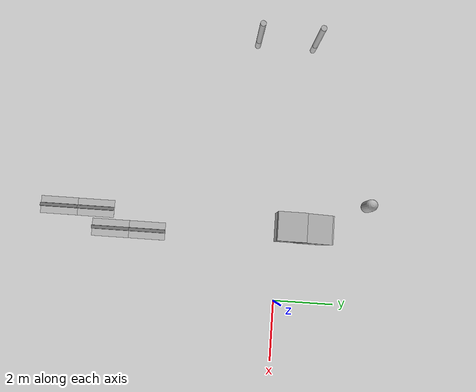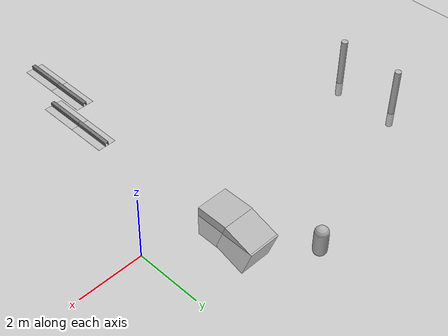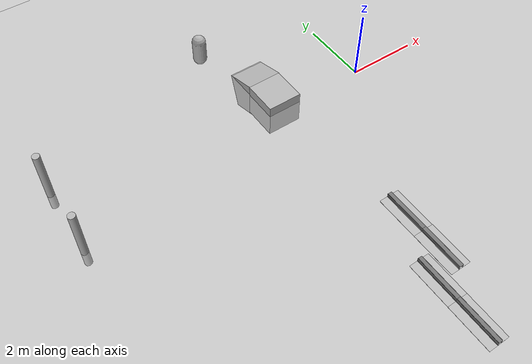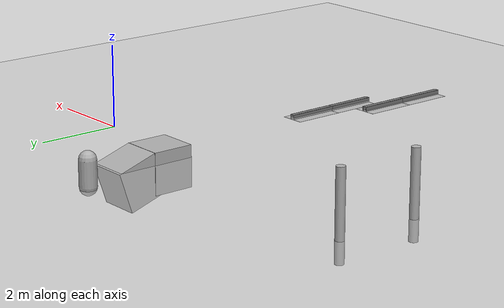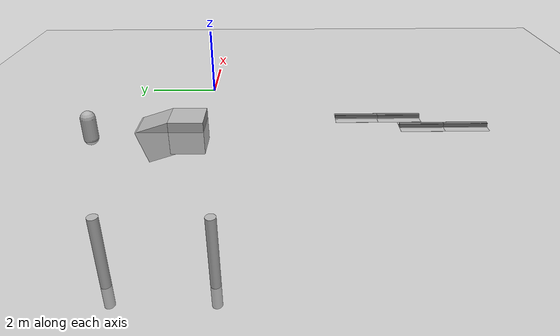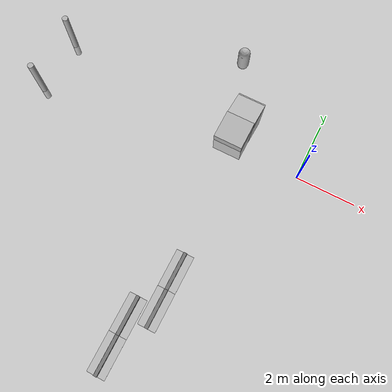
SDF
<sdf version="1.10">
 <world name="empty">
  <physics name="1ms" type="ignored">
   <max_step_size>0.001</max_step_size>
   <real_time_factor>1</real_time_factor>
   <real_time_update_rate>1000</real_time_update_rate>
  </physics>
  <plugin name="gz::sim::systems::Physics" filename="gz-sim-physics-system"/>
  <plugin name="gz::sim::systems::UserCommands" filename="gz-sim-user-commands-system"/>
  <plugin name="gz::sim::systems::SceneBroadcaster" filename="gz-sim-scene-broadcaster-system"/>
  <plugin name="gz::sim::systems::Contact" filename="gz-sim-contact-system"/>
  <gravity>0 0 -9.8000000000000007</gravity>
  <magnetic_field>5.5644999999999998e-06 2.2875799999999999e-05 -4.2388400000000002e-05</magnetic_field>
  <atmosphere type="adiabatic"/>
  <scene>
   <ambient>0.400000006 0.400000006 0.400000006 1</ambient>
   <background>0.699999988 0.699999988 0.699999988 1</background>
   <shadows>true</shadows>
  </scene>
  <model name="ground_plane">
   <static>true</static>
   <link name="link">
    <collision name="collision">
     <geometry><plane><normal>0 0 1</normal><size>100 100</size></plane></geometry>
    </collision>
    <visual name="visual">
     <geometry><plane><normal>0 0 1</normal><size>100 100</size></plane></geometry>
     <material>
      <ambient>0.800000012 0.800000012 0.800000012 1</ambient>
      <diffuse>0.800000012 0.800000012 0.800000012 1</diffuse>
      <specular>0.800000012 0.800000012 0.800000012 1</specular>
     </material>
    </visual>
    <inertial>
     <mass>1</mass>
     <inertia><ixx>1</ixx><ixy>0</ixy><ixz>0</ixz><iyy>1</iyy><iyz>0</iyz><izz>1</izz></inertia>
    </inertial>
   </link>
  </model>
  <model name="frc2016_rockwall">
   <static>true</static>
   <link name="link">
    <inertial>
     <mass>10</mass>
     <pose>0 0 0.08974 0 0 0</pose>
     <inertia>
      <ixx>0.32709083300000003</ixx>
      <ixy>0</ixy>
      <ixz>0</ixz>
      <iyy>1.3741666669999999</iyy>
      <iyz>0</iyz>
      <izz>1.641090833</izz>
     </inertia>
    </inertial>
    <visual name="platform">
     <pose>0 0 0.064320000000000002 0 0 0</pose>
     <geometry><box><size>1.27 0.59689999999999999 0.0031749999999999999</size></box></geometry>
    </visual>
    <collision name="platform">
     <pose>0 0 0.064320000000000002 0 0 0</pose>
     <geometry><box><size>1.27 0.59689999999999999 0.0031749999999999999</size></box></geometry>
    </collision>
    <visual name="up1">
     <pose>0 0.051659999999999998 0.12537000000000001 0 0 0</pose>
     <geometry><box><size>1.27 0.00462 0.11892</size></box></geometry>
     <material>
      <ambient>0.460000008 0.460000008 0.460000008 1</ambient>
      <diffuse>0.460000008 0.460000008 0.460000008 1</diffuse>
     </material>
    </visual>
    <collision name="up1">
     <pose>0 0.051659999999999998 0.12537000000000001 0 0 0</pose>
     <geometry><box><size>1.27 0.00462 0.11892</size></box></geometry>
    </collision>
    <visual name="up2">
     <pose>0 -0.058009999999999999 0.12537000000000001 0 0 0</pose>
     <geometry><box><size>1.27 0.00462 0.11892</size></box></geometry>
     <material>
      <ambient>0.460000008 0.460000008 0.460000008 1</ambient>
      <diffuse>0.460000008 0.460000008 0.460000008 1</diffuse>
     </material>
    </visual>
    <collision name="up2">
     <pose>0 -0.058009999999999999 0.12537000000000001 0 0 0</pose>
     <geometry><box><size>1.27 0.00462 0.11892</size></box></geometry>
    </collision>
    <visual name="top">
     <pose>0 -0.00249 0.18251999999999999 0 0 0</pose>
     <geometry><box><size>1.27 0.1143 0.00462</size></box></geometry>
     <material>
      <ambient>0.460000008 0.460000008 0.460000008 1</ambient>
      <diffuse>0.460000008 0.460000008 0.460000008 1</diffuse>
     </material>
    </visual>
    <collision name="top">
     <pose>0 -0.00249 0.18251999999999999 0 0 0</pose>
     <geometry><box><size>1.27 0.1143 0.00462</size></box></geometry>
    </collision>
   </link>
   <pose>-2.7002499103546143 -7.5103697776794434 -0.10456207394599915 0 0 1.5712199869170431</pose>
  </model>
  <model name="frc2016_rockwall_1">
   <static>true</static>
   <link name="link">
    <inertial>
     <mass>10</mass>
     <pose>0 0 0.08974 0 0 0</pose>
     <inertia>
      <ixx>0.32709083300000003</ixx>
      <ixy>0</ixy>
      <ixz>0</ixz>
      <iyy>1.3741666669999999</iyy>
      <iyz>0</iyz>
      <izz>1.641090833</izz>
     </inertia>
    </inertial>
    <visual name="platform">
     <pose>0 0 0.064320000000000002 0 0 0</pose>
     <geometry><box><size>1.27 0.59689999999999999 0.0031749999999999999</size></box></geometry>
    </visual>
    <collision name="platform">
     <pose>0 0 0.064320000000000002 0 0 0</pose>
     <geometry><box><size>1.27 0.59689999999999999 0.0031749999999999999</size></box></geometry>
    </collision>
    <visual name="up1">
     <pose>0 0.051659999999999998 0.12537000000000001 0 0 0</pose>
     <geometry><box><size>1.27 0.00462 0.11892</size></box></geometry>
     <material>
      <ambient>0.460000008 0.460000008 0.460000008 1</ambient>
      <diffuse>0.460000008 0.460000008 0.460000008 1</diffuse>
     </material>
    </visual>
    <collision name="up1">
     <pose>0 0.051659999999999998 0.12537000000000001 0 0 0</pose>
     <geometry><box><size>1.27 0.00462 0.11892</size></box></geometry>
    </collision>
    <visual name="up2">
     <pose>0 -0.058009999999999999 0.12537000000000001 0 0 0</pose>
     <geometry><box><size>1.27 0.00462 0.11892</size></box></geometry>
     <material>
      <ambient>0.460000008 0.460000008 0.460000008 1</ambient>
      <diffuse>0.460000008 0.460000008 0.460000008 1</diffuse>
     </material>
    </visual>
    <collision name="up2">
     <pose>0 -0.058009999999999999 0.12537000000000001 0 0 0</pose>
     <geometry><box><size>1.27 0.00462 0.11892</size></box></geometry>
    </collision>
    <visual name="top">
     <pose>0 -0.00249 0.18251999999999999 0 0 0</pose>
     <geometry><box><size>1.27 0.1143 0.00462</size></box></geometry>
     <material>
      <ambient>0.460000008 0.460000008 0.460000008 1</ambient>
      <diffuse>0.460000008 0.460000008 0.460000008 1</diffuse>
     </material>
    </visual>
    <collision name="top">
     <pose>0 -0.00249 0.18251999999999999 0 0 0</pose>
     <geometry><box><size>1.27 0.1143 0.00462</size></box></geometry>
    </collision>
   </link>
   <pose>-2.6985399723052979 -6.2470002174377441 -0.10639206320047379 0 0 1.5712199869170431</pose>
  </model>
  <model name="frc2016_rockwall_1_1">
   <static>true</static>
   <link name="link">
    <inertial>
     <mass>10</mass>
     <pose>0 0 0.08974 0 0 0</pose>
     <inertia>
      <ixx>0.32709083300000003</ixx>
      <ixy>0</ixy>
      <ixz>0</ixz>
      <iyy>1.3741666669999999</iyy>
      <iyz>0</iyz>
      <izz>1.641090833</izz>
     </inertia>
    </inertial>
    <visual name="platform">
     <pose>0 0 0.064320000000000002 0 0 0</pose>
     <geometry><box><size>1.27 0.59689999999999999 0.0031749999999999999</size></box></geometry>
    </visual>
    <collision name="platform">
     <pose>0 0 0.064320000000000002 0 0 0</pose>
     <geometry><box><size>1.27 0.59689999999999999 0.0031749999999999999</size></box></geometry>
    </collision>
    <visual name="up1">
     <pose>0 0.051659999999999998 0.12537000000000001 0 0 0</pose>
     <geometry><box><size>1.27 0.00462 0.11892</size></box></geometry>
     <material>
      <ambient>0.460000008 0.460000008 0.460000008 1</ambient>
      <diffuse>0.460000008 0.460000008 0.460000008 1</diffuse>
     </material>
    </visual>
    <collision name="up1">
     <pose>0 0.051659999999999998 0.12537000000000001 0 0 0</pose>
     <geometry><box><size>1.27 0.00462 0.11892</size></box></geometry>
    </collision>
    <visual name="up2">
     <pose>0 -0.058009999999999999 0.12537000000000001 0 0 0</pose>
     <geometry><box><size>1.27 0.00462 0.11892</size></box></geometry>
     <material>
      <ambient>0.460000008 0.460000008 0.460000008 1</ambient>
      <diffuse>0.460000008 0.460000008 0.460000008 1</diffuse>
     </material>
    </visual>
    <collision name="up2">
     <pose>0 -0.058009999999999999 0.12537000000000001 0 0 0</pose>
     <geometry><box><size>1.27 0.00462 0.11892</size></box></geometry>
    </collision>
    <visual name="top">
     <pose>0 -0.00249 0.18251999999999999 0 0 0</pose>
     <geometry><box><size>1.27 0.1143 0.00462</size></box></geometry>
     <material>
      <ambient>0.460000008 0.460000008 0.460000008 1</ambient>
      <diffuse>0.460000008 0.460000008 0.460000008 1</diffuse>
     </material>
    </visual>
    <collision name="top">
     <pose>0 -0.00249 0.18251999999999999 0 0 0</pose>
     <geometry><box><size>1.27 0.1143 0.00462</size></box></geometry>
    </collision>
   </link>
   <pose>-2.0486600399017334 -5.6950101852416992 -0.12306392937898636 0 0 1.5712199869170431</pose>
  </model>
  <model name="frc2016_rockwall_1_1_1">
   <static>true</static>
   <link name="link">
    <inertial>
     <mass>10</mass>
     <pose>0 0 0.08974 0 0 0</pose>
     <inertia>
      <ixx>0.32709083300000003</ixx>
      <ixy>0</ixy>
      <ixz>0</ixz>
      <iyy>1.3741666669999999</iyy>
      <iyz>0</iyz>
      <izz>1.641090833</izz>
     </inertia>
    </inertial>
    <visual name="platform">
     <pose>0 0 0.064320000000000002 0 0 0</pose>
     <geometry><box><size>1.27 0.59689999999999999 0.0031749999999999999</size></box></geometry>
    </visual>
    <collision name="platform">
     <pose>0 0 0.064320000000000002 0 0 0</pose>
     <geometry><box><size>1.27 0.59689999999999999 0.0031749999999999999</size></box></geometry>
    </collision>
    <visual name="up1">
     <pose>0 0.051659999999999998 0.12537000000000001 0 0 0</pose>
     <geometry><box><size>1.27 0.00462 0.11892</size></box></geometry>
     <material>
      <ambient>0.460000008 0.460000008 0.460000008 1</ambient>
      <diffuse>0.460000008 0.460000008 0.460000008 1</diffuse>
     </material>
    </visual>
    <collision name="up1">
     <pose>0 0.051659999999999998 0.12537000000000001 0 0 0</pose>
     <geometry><box><size>1.27 0.00462 0.11892</size></box></geometry>
    </collision>
    <visual name="up2">
     <pose>0 -0.058009999999999999 0.12537000000000001 0 0 0</pose>
     <geometry><box><size>1.27 0.00462 0.11892</size></box></geometry>
     <material>
      <ambient>0.460000008 0.460000008 0.460000008 1</ambient>
      <diffuse>0.460000008 0.460000008 0.460000008 1</diffuse>
     </material>
    </visual>
    <collision name="up2">
     <pose>0 -0.058009999999999999 0.12537000000000001 0 0 0</pose>
     <geometry><box><size>1.27 0.00462 0.11892</size></box></geometry>
    </collision>
    <visual name="top">
     <pose>0 -0.00249 0.18251999999999999 0 0 0</pose>
     <geometry><box><size>1.27 0.1143 0.00462</size></box></geometry>
     <material>
      <ambient>0.460000008 0.460000008 0.460000008 1</ambient>
      <diffuse>0.460000008 0.460000008 0.460000008 1</diffuse>
     </material>
    </visual>
    <collision name="top">
     <pose>0 -0.00249 0.18251999999999999 0 0 0</pose>
     <geometry><box><size>1.27 0.1143 0.00462</size></box></geometry>
    </collision>
   </link>
   <pose>-2.0499799251556396 -4.4498801231384277 -0.1247732862830162 0 0 1.5712199869170431</pose>
  </model>
  <model name="cylinder">
   <pose>-8.9811983108520508 0.97775900363922119 0.5 0 0 0</pose>
   <link name="cylinder_link">
    <inertial>
     <inertia>
      <ixx>0.14580000000000001</ixx>
      <ixy>0</ixy>
      <ixz>0</ixz>
      <iyy>0.14580000000000001</iyy>
      <iyz>0</iyz>
      <izz>0.125</izz>
     </inertia>
     <mass>1</mass>
    </inertial>
    <collision name="cylinder_collision">
     <geometry><cylinder><radius>0.5</radius><length>1</length></cylinder></geometry>
    </collision>
    <visual name="cylinder_visual">
     <geometry><cylinder><radius>0.10000000000000001</radius><length>2</length></cylinder></geometry>
     <material>
      <ambient>0.300000012 0.300000012 0.300000012 1</ambient>
      <diffuse>0.699999988 0.699999988 0.699999988 1</diffuse>
      <specular>1 1 1 1</specular>
     </material>
    </visual>
   </link>
   <static>false</static>
  </model>
  <model name="cylinder_1">
   <pose>-9.012346495167975 -1.0121259450758813 0.5 0 0 0</pose>
   <link name="cylinder_link">
    <inertial>
     <inertia>
      <ixx>0.14580000000000001</ixx>
      <ixy>0</ixy>
      <ixz>0</ixz>
      <iyy>0.14580000000000001</iyy>
      <iyz>0</iyz>
      <izz>0.125</izz>
     </inertia>
     <mass>1</mass>
    </inertial>
    <collision name="cylinder_collision">
     <geometry><cylinder><radius>0.5</radius><length>1</length></cylinder></geometry>
    </collision>
    <visual name="cylinder_visual">
     <geometry><cylinder><radius>0.10000000000000001</radius><length>2</length></cylinder></geometry>
     <material>
      <ambient>0.300000012 0.300000012 0.300000012 1</ambient>
      <diffuse>0.699999988 0.699999988 0.699999988 1</diffuse>
      <specular>1 1 1 1</specular>
     </material>
    </visual>
   </link>
   <static>false</static>
  </model>
  <model name="box">
   <pose>-2.498150110244751 0.49283799529075623 -0.2164795845746994 0 0 0</pose>
   <link name="box_link">
    <inertial>
     <inertia><ixx>0.16666</ixx><ixy>0</ixy><ixz>0</ixz><iyy>0.16666</iyy><iyz>0</iyz><izz>0.16666</izz></inertia>
     <mass>1</mass>
    </inertial>
    <collision name="box_collision"><geometry><box><size>1 1 1</size></box></geometry></collision>
    <visual name="box_visual">
     <geometry><box><size>1 1 1</size></box></geometry>
     <material>
      <ambient>0.300000012 0.300000012 0.300000012 1</ambient>
      <diffuse>0.699999988 0.699999988 0.699999988 1</diffuse>
      <specular>1 1 1 1</specular>
     </material>
    </visual>
   </link>
   <static>false</static>
  </model>
  <model name="box_0">
   <pose>-2.4876399040222168 1.3118331432342529 -0.34988549351692194 -0.31393998167267784 0 0</pose>
   <link name="box_link">
    <inertial>
     <inertia><ixx>0.16666</ixx><ixy>0</ixy><ixz>0</ixz><iyy>0.16666</iyy><iyz>0</iyz><izz>0.16666</izz></inertia>
     <mass>1</mass>
    </inertial>
    <collision name="box_collision"><geometry><box><size>1 1 1</size></box></geometry></collision>
    <visual name="box_visual">
     <geometry><box><size>1 1 1</size></box></geometry>
     <material>
      <ambient>0.300000012 0.300000012 0.300000012 1</ambient>
      <diffuse>0.699999988 0.699999988 0.699999988 1</diffuse>
      <specular>1 1 1 1</specular>
     </material>
    </visual>
   </link>
   <static>false</static>
  </model>
  <model name="capsule">
   <pose>-3.3680999279022217 3.0115900039672852 0.34098318219184875 0 0 0</pose>
   <link name="capsule_link">
    <inertial>
     <inertia>
      <ixx>0.074153999999999998</ixx>
      <ixy>0</ixy>
      <ixz>0</ixz>
      <iyy>0.074153999999999998</iyy>
      <iyz>0</iyz>
      <izz>0.018769000000000001</izz>
     </inertia>
     <mass>1</mass>
    </inertial>
    <collision name="capsule_collision">
     <geometry>
      <capsule><radius>0.20000000000000001</radius><length>0.59999999999999998</length></capsule>
     </geometry>
    </collision>
    <visual name="capsule_visual">
     <geometry>
      <capsule><radius>0.20000000000000001</radius><length>0.59999999999999998</length></capsule>
     </geometry>
     <material>
      <ambient>0.300000012 0.300000012 0.300000012 1</ambient>
      <diffuse>0.699999988 0.699999988 0.699999988 1</diffuse>
      <specular>1 1 1 1</specular>
     </material>
    </visual>
   </link>
   <static>false</static>
  </model>
  <light name="sun" type="directional">
   <pose>0 0 10 0 0 0</pose>
   <intensity>1</intensity>
   <direction>-0.5 0.10000000000000001 -0.90000000000000002</direction>
   <diffuse>0.800000012 0.800000012 0.800000012 1</diffuse>
   <specular>0.200000003 0.200000003 0.200000003 1</specular>
   <attenuation>
    <range>1000</range>
    <linear>0.0099999997764825821</linear>
    <constant>0.89999997615814209</constant>
    <quadratic>0.0010000000474974513</quadratic>
   </attenuation>
   <spot><inner_angle>0</inner_angle><outer_angle>0</outer_angle><falloff>0</falloff></spot>
  </light>
 </world>
</sdf>
